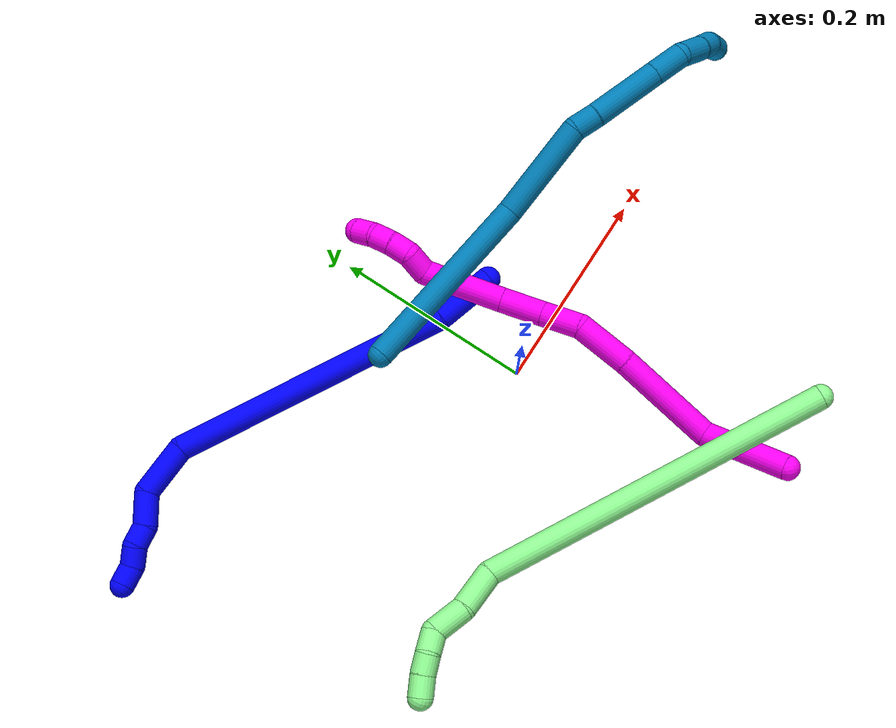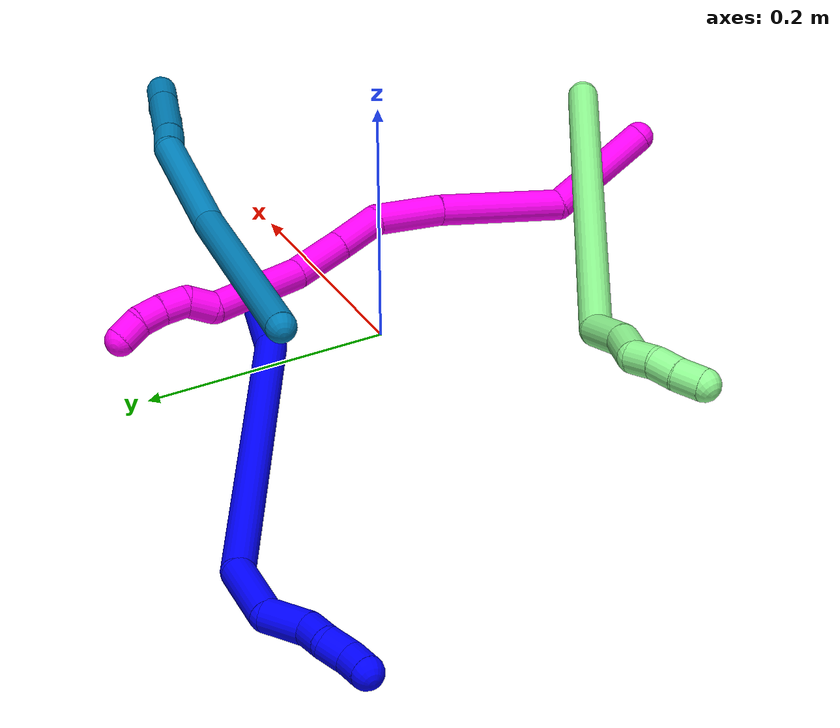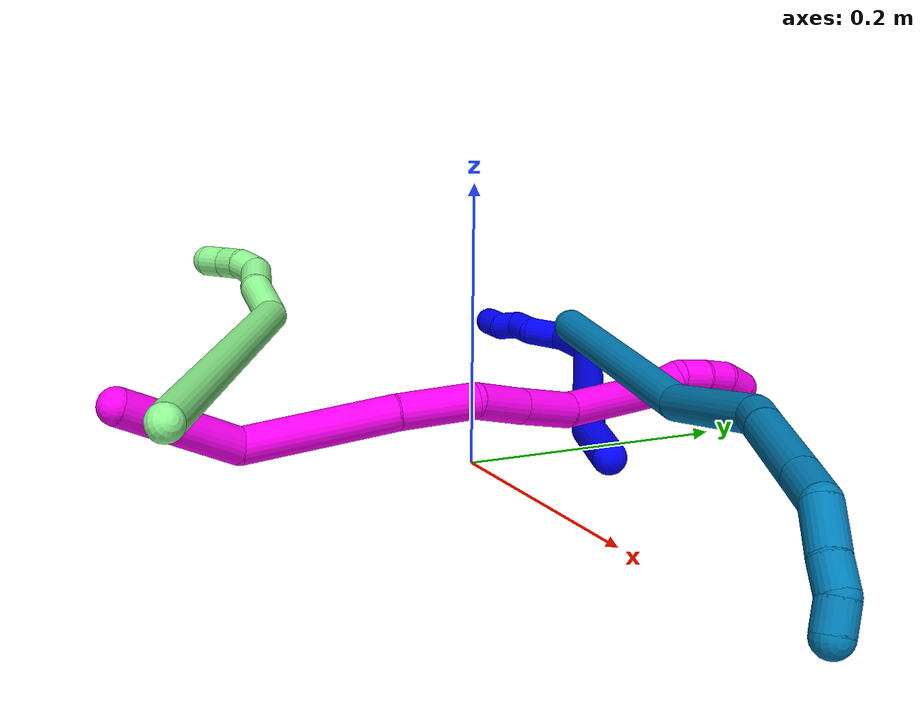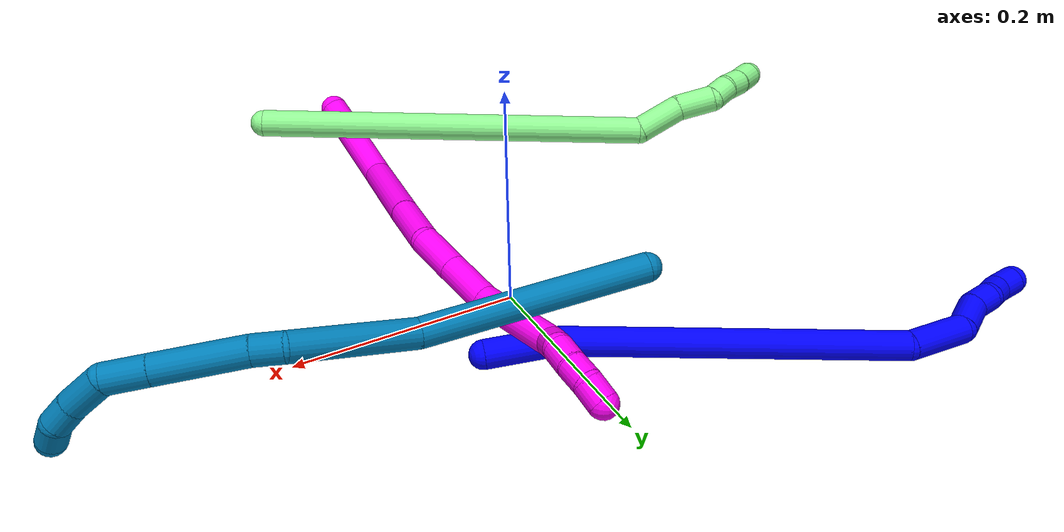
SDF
<sdf version="1.7">
 <world name="default">
  <model name="photoneo_s_sensor">
   <static>1</static>
   <pose>0 0 2 1.57079 1.57079 3.14159</pose>
   <link name="link">
    <inertial><mass>0.1</mass></inertial>
    <sensor name="sensor" type="depth">
     <update_rate>30</update_rate>
     <camera>
      <horizontal_fov>1.22</horizontal_fov>
      <image><width>1920</width><height>1200</height><format>B8G8R8</format></image>
      <clip><near>0.1</near><far>4</far></clip>
      <depth_camera><output>points</output></depth_camera>
     </camera>
     <plugin name="camera_plugin" filename="libgazebo_ros_depth_camera.so">
      <baseline>0.2</baseline>
      <alwaysOn>1</alwaysOn>
      <updateRate>0.0</updateRate>
      <cameraName>camera_ir</cameraName>
      <imageTopicName>/camera/color/image_raw</imageTopicName>
      <cameraInfoTopicName>/camera/color/camera_info</cameraInfoTopicName>
      <depthImageTopicName>/camera/depth/image_raw</depthImageTopicName>
      <depthImageCameraInfoTopicName>/camera/depth/camera_info</depthImageCameraInfoTopicName>
      <pointCloudTopicName>/camera/depth/points</pointCloudTopicName>
      <frameName>fr_optical</frameName>
      <pointCloudCutoff>0.1</pointCloudCutoff>
      <pointCloudCutoffMax>2.0</pointCloudCutoffMax>
      <distortionK1>0</distortionK1>
      <distortionK2>0</distortionK2>
      <distortionK3>0</distortionK3>
      <distortionT1>0</distortionT1>
      <distortionT2>0</distortionT2>
      <CxPrime>0</CxPrime>
      <Cx>0</Cx>
      <Cy>0</Cy>
      <focalLength>0</focalLength>
      <hackBaseline>0</hackBaseline>
     </plugin>
    </sensor>
   </link>
  </model>
  <model name="bin">
   <static>1</static>
   <link name="bottom">
    <collision name="collision-bottom">
     <pose>0 0 -0.01 0 -0 0</pose>
     <geometry><box><size>0.8 0.6 0.02</size></box></geometry>
     <surface>
      <friction><ode><mu>100</mu><mu2>100</mu2></ode></friction>
      <contact><collide_bitmask>65535</collide_bitmask></contact>
     </surface>
    </collision>
   </link>
   <link name="west_wall">
    <collision name="collision-west_wall">
     <pose>-0.41 0 0.1 0 -0 0</pose>
     <geometry><box><size>0.02 0.6 0.2</size></box></geometry>
     <surface>
      <friction><ode><mu>100</mu><mu2>100</mu2></ode></friction>
      <contact><collide_bitmask>65535</collide_bitmask></contact>
     </surface>
    </collision>
   </link>
   <link name="east_wall">
    <collision name="collision-east_wall">
     <pose>0.41 0 0.1 0 -0 0</pose>
     <geometry><box><size>0.02 0.6 0.2</size></box></geometry>
     <surface>
      <friction><ode><mu>100</mu><mu2>100</mu2></ode></friction>
      <contact><collide_bitmask>65535</collide_bitmask></contact>
     </surface>
    </collision>
   </link>
   <link name="south_wall">
    <collision name="collision-south_wall">
     <pose>0 -0.31 0.1 0 -0 0</pose>
     <geometry><box><size>0.8 0.02 0.2</size></box></geometry>
     <surface>
      <friction><ode><mu>100</mu><mu2>100</mu2></ode></friction>
      <contact><collide_bitmask>65535</collide_bitmask></contact>
     </surface>
    </collision>
   </link>
   <link name="north_wall">
    <collision name="collision-north_wall">
     <pose>0 0.31 0.1 0 -0 0</pose>
     <geometry><box><size>0.8 0.02 0.2</size></box></geometry>
     <surface>
      <friction><ode><mu>100</mu><mu2>100</mu2></ode></friction>
      <contact><collide_bitmask>65535</collide_bitmask></contact>
     </surface>
    </collision>
   </link>
  </model>
  <model name="1">
   <static>0</static>
   <link name="1">
    <collision name="collision-cylinder-e_1_1_4">
     <pose>-0.004019 0.009204 0.029469 -0.302724 -0.129452 0.019772</pose>
     <geometry><cylinder><radius>0.0125</radius><length>0.062266</length></cylinder></geometry>
     <surface>
      <friction><ode><mu>1.16</mu><mu2>1.16</mu2><slip1>0</slip1><slip2>0</slip2></ode></friction>
      <contact><ode><kp>1e+06</kp><kd>1</kd><max_vel>0</max_vel><min_depth>0.001</min_depth></ode></contact>
     </surface>
    </collision>
    <visual name="visual-cylinder-e_1_1_4">
     <pose>-0.004019 0.009204 0.029469 -0.302724 -0.129452 0.019772</pose>
     <geometry><cylinder><radius>0.0125</radius><length>0.062266</length></cylinder></geometry>
     <material><ambient>0 0 1 1</ambient></material>
    </visual>
    <collision name="collision-cylinder-e_2_4_5">
     <pose>-0.058876 0.065907 0.184811 -0.360834 -0.361289 0.066601</pose>
     <geometry><cylinder><radius>0.0125</radius><length>0.287644</length></cylinder></geometry>
     <surface>
      <friction><ode><mu>1.16</mu><mu2>1.16</mu2><slip1>0</slip1><slip2>0</slip2></ode></friction>
      <contact><ode><kp>1e+06</kp><kd>1</kd><max_vel>0</max_vel><min_depth>0.001</min_depth></ode></contact>
     </surface>
    </collision>
    <visual name="visual-cylinder-e_2_4_5">
     <pose>-0.058876 0.065907 0.184811 -0.360834 -0.361289 0.066601</pose>
     <geometry><cylinder><radius>0.0125</radius><length>0.287644</length></cylinder></geometry>
     <material><ambient>0 0 1 1</ambient></material>
    </visual>
    <collision name="collision-cylinder-e_3_5_6">
     <pose>-0.108482 0.117528 0.33723 -0.15406 0.045853 -0.00354</pose>
     <geometry><cylinder><radius>0.0125</radius><length>0.053785</length></cylinder></geometry>
     <surface>
      <friction><ode><mu>1.16</mu><mu2>1.16</mu2><slip1>0</slip1><slip2>0</slip2></ode></friction>
      <contact><ode><kp>1e+06</kp><kd>1</kd><max_vel>0</max_vel><min_depth>0.001</min_depth></ode></contact>
     </surface>
    </collision>
    <visual name="visual-cylinder-e_3_5_6">
     <pose>-0.108482 0.117528 0.33723 -0.15406 0.045853 -0.00354</pose>
     <geometry><cylinder><radius>0.0125</radius><length>0.053785</length></cylinder></geometry>
     <material><ambient>0 0 1 1</ambient></material>
    </visual>
    <collision name="collision-cylinder-e_4_6_7">
     <pose>-0.097515 0.11961 0.377688 0.145587 0.605524 0.045549</pose>
     <geometry><cylinder><radius>0.0125</radius><length>0.034203</length></cylinder></geometry>
     <surface>
      <friction><ode><mu>1.16</mu><mu2>1.16</mu2><slip1>0</slip1><slip2>0</slip2></ode></friction>
      <contact><ode><kp>1e+06</kp><kd>1</kd><max_vel>0</max_vel><min_depth>0.001</min_depth></ode></contact>
     </surface>
    </collision>
    <visual name="visual-cylinder-e_4_6_7">
     <pose>-0.097515 0.11961 0.377688 0.145587 0.605524 0.045549</pose>
     <geometry><cylinder><radius>0.0125</radius><length>0.034203</length></cylinder></geometry>
     <material><ambient>0 0 1 1</ambient></material>
    </visual>
    <collision name="collision-cylinder-e_5_7_8">
     <pose>-0.085176 0.119004 0.401732 -0.140583 0.249302 -0.017644</pose>
     <geometry><cylinder><radius>0.0125</radius><length>0.021117</length></cylinder></geometry>
     <surface>
      <friction><ode><mu>1.16</mu><mu2>1.16</mu2><slip1>0</slip1><slip2>0</slip2></ode></friction>
      <contact><ode><kp>1e+06</kp><kd>1</kd><max_vel>0</max_vel><min_depth>0.001</min_depth></ode></contact>
     </surface>
    </collision>
    <visual name="visual-cylinder-e_5_7_8">
     <pose>-0.085176 0.119004 0.401732 -0.140583 0.249302 -0.017644</pose>
     <geometry><cylinder><radius>0.0125</radius><length>0.021117</length></cylinder></geometry>
     <material><ambient>0 0 1 1</ambient></material>
    </visual>
    <collision name="collision-cylinder-e_6_8_9">
     <pose>-0.07871 0.117719 0.421002 0.289175 0.384765 0.05671</pose>
     <geometry><cylinder><radius>0.0125</radius><length>0.020572</length></cylinder></geometry>
     <surface>
      <friction><ode><mu>1.16</mu><mu2>1.16</mu2><slip1>0</slip1><slip2>0</slip2></ode></friction>
      <contact><ode><kp>1e+06</kp><kd>1</kd><max_vel>0</max_vel><min_depth>0.001</min_depth></ode></contact>
     </surface>
    </collision>
    <visual name="visual-cylinder-e_6_8_9">
     <pose>-0.07871 0.117719 0.421002 0.289175 0.384765 0.05671</pose>
     <geometry><cylinder><radius>0.0125</radius><length>0.020572</length></cylinder></geometry>
     <material><ambient>0 0 1 1</ambient></material>
    </visual>
    <collision name="collision-cylinder-e_7_9_2">
     <pose>-0.072576 0.116217 0.440015 -0.122559 0.224616 -0.01384</pose>
     <geometry><cylinder><radius>0.0125</radius><length>0.020412</length></cylinder></geometry>
     <surface>
      <friction><ode><mu>1.16</mu><mu2>1.16</mu2><slip1>0</slip1><slip2>0</slip2></ode></friction>
      <contact><ode><kp>1e+06</kp><kd>1</kd><max_vel>0</max_vel><min_depth>0.001</min_depth></ode></contact>
     </surface>
    </collision>
    <visual name="visual-cylinder-e_7_9_2">
     <pose>-0.072576 0.116217 0.440015 -0.122559 0.224616 -0.01384</pose>
     <geometry><cylinder><radius>0.0125</radius><length>0.020412</length></cylinder></geometry>
     <material><ambient>0 0 1 1</ambient></material>
    </visual>
    <collision name="collision-sphere-2">
     <pose>-0.070303 0.117433 0.44989 0 -0 0</pose>
     <geometry><sphere><radius>0.0125</radius></sphere></geometry>
     <surface>
      <friction><ode><mu>1.16</mu><mu2>1.16</mu2><slip1>0</slip1><slip2>0</slip2></ode></friction>
      <contact><ode><kp>1e+06</kp><kd>1</kd><max_vel>0</max_vel><min_depth>0.001</min_depth></ode></contact>
     </surface>
    </collision>
    <visual name="visual-sphere-2">
     <pose>-0.070303 0.117433 0.44989 0 -0 0</pose>
     <geometry><sphere><radius>0.0125</radius></sphere></geometry>
     <material><ambient>0 0 1 1</ambient></material>
    </visual>
    <collision name="collision-sphere-9">
     <pose>-0.074849 0.115 0.43014 0 -0 0</pose>
     <geometry><sphere><radius>0.0125</radius></sphere></geometry>
     <surface>
      <friction><ode><mu>1.16</mu><mu2>1.16</mu2><slip1>0</slip1><slip2>0</slip2></ode></friction>
      <contact><ode><kp>1e+06</kp><kd>1</kd><max_vel>0</max_vel><min_depth>0.001</min_depth></ode></contact>
     </surface>
    </collision>
    <visual name="visual-sphere-9">
     <pose>-0.074849 0.115 0.43014 0 -0 0</pose>
     <geometry><sphere><radius>0.0125</radius></sphere></geometry>
     <material><ambient>0 0 1 1</ambient></material>
    </visual>
    <collision name="collision-sphere-4">
     <pose>-0.008038 0.018408 0.058938 0 -0 0</pose>
     <geometry><sphere><radius>0.0125</radius></sphere></geometry>
     <surface>
      <friction><ode><mu>1.16</mu><mu2>1.16</mu2><slip1>0</slip1><slip2>0</slip2></ode></friction>
      <contact><ode><kp>1e+06</kp><kd>1</kd><max_vel>0</max_vel><min_depth>0.001</min_depth></ode></contact>
     </surface>
    </collision>
    <visual name="visual-sphere-4">
     <pose>-0.008038 0.018408 0.058938 0 -0 0</pose>
     <geometry><sphere><radius>0.0125</radius></sphere></geometry>
     <material><ambient>0 0 1 1</ambient></material>
    </visual>
    <collision name="collision-sphere-1">
     <geometry><sphere><radius>0.0125</radius></sphere></geometry>
     <surface>
      <friction><ode><mu>1.16</mu><mu2>1.16</mu2><slip1>0</slip1><slip2>0</slip2></ode></friction>
      <contact><ode><kp>1e+06</kp><kd>1</kd><max_vel>0</max_vel><min_depth>0.001</min_depth></ode></contact>
     </surface>
    </collision>
    <visual name="visual-sphere-1">
     <geometry><sphere><radius>0.0125</radius></sphere></geometry>
     <material><ambient>0 0 1 1</ambient></material>
    </visual>
    <collision name="collision-sphere-8">
     <pose>-0.082571 0.120438 0.411863 0 -0 0</pose>
     <geometry><sphere><radius>0.0125</radius></sphere></geometry>
     <surface>
      <friction><ode><mu>1.16</mu><mu2>1.16</mu2><slip1>0</slip1><slip2>0</slip2></ode></friction>
      <contact><ode><kp>1e+06</kp><kd>1</kd><max_vel>0</max_vel><min_depth>0.001</min_depth></ode></contact>
     </surface>
    </collision>
    <visual name="visual-sphere-8">
     <pose>-0.082571 0.120438 0.411863 0 -0 0</pose>
     <geometry><sphere><radius>0.0125</radius></sphere></geometry>
     <material><ambient>0 0 1 1</ambient></material>
    </visual>
    <collision name="collision-sphere-5">
     <pose>-0.109715 0.113406 0.310684 0 -0 0</pose>
     <geometry><sphere><radius>0.0125</radius></sphere></geometry>
     <surface>
      <friction><ode><mu>1.16</mu><mu2>1.16</mu2><slip1>0</slip1><slip2>0</slip2></ode></friction>
      <contact><ode><kp>1e+06</kp><kd>1</kd><max_vel>0</max_vel><min_depth>0.001</min_depth></ode></contact>
     </surface>
    </collision>
    <visual name="visual-sphere-5">
     <pose>-0.109715 0.113406 0.310684 0 -0 0</pose>
     <geometry><sphere><radius>0.0125</radius></sphere></geometry>
     <material><ambient>0 0 1 1</ambient></material>
    </visual>
    <collision name="collision-sphere-6">
     <pose>-0.107249 0.12165 0.363776 0 -0 0</pose>
     <geometry><sphere><radius>0.0125</radius></sphere></geometry>
     <surface>
      <friction><ode><mu>1.16</mu><mu2>1.16</mu2><slip1>0</slip1><slip2>0</slip2></ode></friction>
      <contact><ode><kp>1e+06</kp><kd>1</kd><max_vel>0</max_vel><min_depth>0.001</min_depth></ode></contact>
     </surface>
    </collision>
    <visual name="visual-sphere-6">
     <pose>-0.107249 0.12165 0.363776 0 -0 0</pose>
     <geometry><sphere><radius>0.0125</radius></sphere></geometry>
     <material><ambient>0 0 1 1</ambient></material>
    </visual>
    <collision name="collision-sphere-7">
     <pose>-0.087781 0.11757 0.391601 0 -0 0</pose>
     <geometry><sphere><radius>0.0125</radius></sphere></geometry>
     <surface>
      <friction><ode><mu>1.16</mu><mu2>1.16</mu2><slip1>0</slip1><slip2>0</slip2></ode></friction>
      <contact><ode><kp>1e+06</kp><kd>1</kd><max_vel>0</max_vel><min_depth>0.001</min_depth></ode></contact>
     </surface>
    </collision>
    <visual name="visual-sphere-7">
     <pose>-0.087781 0.11757 0.391601 0 -0 0</pose>
     <geometry><sphere><radius>0.0125</radius></sphere></geometry>
     <material><ambient>0 0 1 1</ambient></material>
    </visual>
    <inertial>
     <pose>-0.06251 0.0745 0.224354 0 -0 0</pose>
     <mass>0.5</mass>
     <inertia>
      <ixx>0.002027</ixx>
      <ixy>0</ixy>
      <ixz>0</ixz>
      <iyy>0.002058</iyy>
      <iyz>0</iyz>
      <izz>7.1e-05</izz>
     </inertia>
    </inertial>
   </link>
   <pose>0.063472 0.075536 0.011552 1.74061 -0.489316 -1.69049</pose>
  </model>
  <model name="9">
   <static>0</static>
   <link name="9">
    <collision name="collision-cylinder-e_1_1_4">
     <pose>0.021314 -0.000131 0.092889 0.001416 0.22555 0.00016</pose>
     <geometry><cylinder><radius>0.0125</radius><length>0.190606</length></cylinder></geometry>
     <surface>
      <friction><ode><mu>1.16</mu><mu2>1.16</mu2><slip1>0</slip1><slip2>0</slip2></ode></friction>
      <contact><ode><kp>1e+06</kp><kd>1</kd><max_vel>0</max_vel><min_depth>0.001</min_depth></ode></contact>
     </surface>
    </collision>
    <visual name="visual-cylinder-e_1_1_4">
     <pose>0.021314 -0.000131 0.092889 0.001416 0.22555 0.00016</pose>
     <geometry><cylinder><radius>0.0125</radius><length>0.190606</length></cylinder></geometry>
     <material><ambient>0 0.490196 0.709804 1</ambient></material>
    </visual>
    <collision name="collision-cylinder-e_2_4_5">
     <pose>0.042987 0.005521 0.236509 -0.113521 0.007044 -0.0004</pose>
     <geometry><cylinder><radius>0.0125</radius><length>0.102122</length></cylinder></geometry>
     <surface>
      <friction><ode><mu>1.16</mu><mu2>1.16</mu2><slip1>0</slip1><slip2>0</slip2></ode></friction>
      <contact><ode><kp>1e+06</kp><kd>1</kd><max_vel>0</max_vel><min_depth>0.001</min_depth></ode></contact>
     </surface>
    </collision>
    <visual name="visual-cylinder-e_2_4_5">
     <pose>0.042987 0.005521 0.236509 -0.113521 0.007044 -0.0004</pose>
     <geometry><cylinder><radius>0.0125</radius><length>0.102122</length></cylinder></geometry>
     <material><ambient>0 0.490196 0.709804 1</ambient></material>
    </visual>
    <collision name="collision-cylinder-e_3_5_6">
     <pose>0.044646 0.00826 0.299229 0.248752 0.104594 0.013088</pose>
     <geometry><cylinder><radius>0.0125</radius><length>0.024875</length></cylinder></geometry>
     <surface>
      <friction><ode><mu>1.16</mu><mu2>1.16</mu2><slip1>0</slip1><slip2>0</slip2></ode></friction>
      <contact><ode><kp>1e+06</kp><kd>1</kd><max_vel>0</max_vel><min_depth>0.001</min_depth></ode></contact>
     </surface>
    </collision>
    <visual name="visual-cylinder-e_3_5_6">
     <pose>0.044646 0.00826 0.299229 0.248752 0.104594 0.013088</pose>
     <geometry><cylinder><radius>0.0125</radius><length>0.024875</length></cylinder></geometry>
     <material><ambient>0 0.490196 0.709804 1</ambient></material>
    </visual>
    <collision name="collision-cylinder-e_4_6_7">
     <pose>0.05298 -0.002302 0.34632 0.210924 0.19355 0.020552</pose>
     <geometry><cylinder><radius>0.0125</radius><length>0.073163</length></cylinder></geometry>
     <surface>
      <friction><ode><mu>1.16</mu><mu2>1.16</mu2><slip1>0</slip1><slip2>0</slip2></ode></friction>
      <contact><ode><kp>1e+06</kp><kd>1</kd><max_vel>0</max_vel><min_depth>0.001</min_depth></ode></contact>
     </surface>
    </collision>
    <visual name="visual-cylinder-e_4_6_7">
     <pose>0.05298 -0.002302 0.34632 0.210924 0.19355 0.020552</pose>
     <geometry><cylinder><radius>0.0125</radius><length>0.073163</length></cylinder></geometry>
     <material><ambient>0 0.490196 0.709804 1</ambient></material>
    </visual>
    <collision name="collision-cylinder-e_5_7_8">
     <pose>0.063369 -0.013443 0.397875 0.216914 0.196423 0.021456</pose>
     <geometry><cylinder><radius>0.0125</radius><length>0.034355</length></cylinder></geometry>
     <surface>
      <friction><ode><mu>1.16</mu><mu2>1.16</mu2><slip1>0</slip1><slip2>0</slip2></ode></friction>
      <contact><ode><kp>1e+06</kp><kd>1</kd><max_vel>0</max_vel><min_depth>0.001</min_depth></ode></contact>
     </surface>
    </collision>
    <visual name="visual-cylinder-e_5_7_8">
     <pose>0.063369 -0.013443 0.397875 0.216914 0.196423 0.021456</pose>
     <geometry><cylinder><radius>0.0125</radius><length>0.034355</length></cylinder></geometry>
     <material><ambient>0 0.490196 0.709804 1</ambient></material>
    </visual>
    <collision name="collision-cylinder-e_6_8_9">
     <pose>0.077676 -0.023795 0.424852 0.568635 0.720018 0.219121</pose>
     <geometry><cylinder><radius>0.0125</radius><length>0.033227</length></cylinder></geometry>
     <surface>
      <friction><ode><mu>1.16</mu><mu2>1.16</mu2><slip1>0</slip1><slip2>0</slip2></ode></friction>
      <contact><ode><kp>1e+06</kp><kd>1</kd><max_vel>0</max_vel><min_depth>0.001</min_depth></ode></contact>
     </surface>
    </collision>
    <visual name="visual-cylinder-e_6_8_9">
     <pose>0.077676 -0.023795 0.424852 0.568635 0.720018 0.219121</pose>
     <geometry><cylinder><radius>0.0125</radius><length>0.033227</length></cylinder></geometry>
     <material><ambient>0 0.490196 0.709804 1</ambient></material>
    </visual>
    <collision name="collision-cylinder-e_7_9_10">
     <pose>0.096703 -0.034049 0.441584 0.516969 0.846581 0.23712</pose>
     <geometry><cylinder><radius>0.0125</radius><length>0.021553</length></cylinder></geometry>
     <surface>
      <friction><ode><mu>1.16</mu><mu2>1.16</mu2><slip1>0</slip1><slip2>0</slip2></ode></friction>
      <contact><ode><kp>1e+06</kp><kd>1</kd><max_vel>0</max_vel><min_depth>0.001</min_depth></ode></contact>
     </surface>
    </collision>
    <visual name="visual-cylinder-e_7_9_10">
     <pose>0.096703 -0.034049 0.441584 0.516969 0.846581 0.23712</pose>
     <geometry><cylinder><radius>0.0125</radius><length>0.021553</length></cylinder></geometry>
     <material><ambient>0 0.490196 0.709804 1</ambient></material>
    </visual>
    <collision name="collision-cylinder-e_8_10_2">
     <pose>0.112861 -0.043198 0.449796 1.22798 0.935071 0.683787</pose>
     <geometry><cylinder><radius>0.0125</radius><length>0.020099</length></cylinder></geometry>
     <surface>
      <friction><ode><mu>1.16</mu><mu2>1.16</mu2><slip1>0</slip1><slip2>0</slip2></ode></friction>
      <contact><ode><kp>1e+06</kp><kd>1</kd><max_vel>0</max_vel><min_depth>0.001</min_depth></ode></contact>
     </surface>
    </collision>
    <visual name="visual-cylinder-e_8_10_2">
     <pose>0.112861 -0.043198 0.449796 1.22798 0.935071 0.683787</pose>
     <geometry><cylinder><radius>0.0125</radius><length>0.020099</length></cylinder></geometry>
     <material><ambient>0 0.490196 0.709804 1</ambient></material>
    </visual>
    <collision name="collision-sphere-2">
     <pose>0.120948 -0.048818 0.451802 0 -0 0</pose>
     <geometry><sphere><radius>0.0125</radius></sphere></geometry>
     <surface>
      <friction><ode><mu>1.16</mu><mu2>1.16</mu2><slip1>0</slip1><slip2>0</slip2></ode></friction>
      <contact><ode><kp>1e+06</kp><kd>1</kd><max_vel>0</max_vel><min_depth>0.001</min_depth></ode></contact>
     </surface>
    </collision>
    <visual name="visual-sphere-2">
     <pose>0.120948 -0.048818 0.451802 0 -0 0</pose>
     <geometry><sphere><radius>0.0125</radius></sphere></geometry>
     <material><ambient>0 0.490196 0.709804 1</ambient></material>
    </visual>
    <collision name="collision-sphere-10">
     <pose>0.104775 -0.037578 0.447791 0 -0 0</pose>
     <geometry><sphere><radius>0.0125</radius></sphere></geometry>
     <surface>
      <friction><ode><mu>1.16</mu><mu2>1.16</mu2><slip1>0</slip1><slip2>0</slip2></ode></friction>
      <contact><ode><kp>1e+06</kp><kd>1</kd><max_vel>0</max_vel><min_depth>0.001</min_depth></ode></contact>
     </surface>
    </collision>
    <visual name="visual-sphere-10">
     <pose>0.104775 -0.037578 0.447791 0 -0 0</pose>
     <geometry><sphere><radius>0.0125</radius></sphere></geometry>
     <material><ambient>0 0.490196 0.709804 1</ambient></material>
    </visual>
    <collision name="collision-sphere-9">
     <pose>0.088631 -0.03052 0.435377 0 -0 0</pose>
     <geometry><sphere><radius>0.0125</radius></sphere></geometry>
     <surface>
      <friction><ode><mu>1.16</mu><mu2>1.16</mu2><slip1>0</slip1><slip2>0</slip2></ode></friction>
      <contact><ode><kp>1e+06</kp><kd>1</kd><max_vel>0</max_vel><min_depth>0.001</min_depth></ode></contact>
     </surface>
    </collision>
    <visual name="visual-sphere-9">
     <pose>0.088631 -0.03052 0.435377 0 -0 0</pose>
     <geometry><sphere><radius>0.0125</radius></sphere></geometry>
     <material><ambient>0 0.490196 0.709804 1</ambient></material>
    </visual>
    <collision name="collision-sphere-4">
     <pose>0.042628 -0.000263 0.185778 0 -0 0</pose>
     <geometry><sphere><radius>0.0125</radius></sphere></geometry>
     <surface>
      <friction><ode><mu>1.16</mu><mu2>1.16</mu2><slip1>0</slip1><slip2>0</slip2></ode></friction>
      <contact><ode><kp>1e+06</kp><kd>1</kd><max_vel>0</max_vel><min_depth>0.001</min_depth></ode></contact>
     </surface>
    </collision>
    <visual name="visual-sphere-4">
     <pose>0.042628 -0.000263 0.185778 0 -0 0</pose>
     <geometry><sphere><radius>0.0125</radius></sphere></geometry>
     <material><ambient>0 0.490196 0.709804 1</ambient></material>
    </visual>
    <collision name="collision-sphere-1">
     <geometry><sphere><radius>0.0125</radius></sphere></geometry>
     <surface>
      <friction><ode><mu>1.16</mu><mu2>1.16</mu2><slip1>0</slip1><slip2>0</slip2></ode></friction>
      <contact><ode><kp>1e+06</kp><kd>1</kd><max_vel>0</max_vel><min_depth>0.001</min_depth></ode></contact>
     </surface>
    </collision>
    <visual name="visual-sphere-1">
     <geometry><sphere><radius>0.0125</radius></sphere></geometry>
     <material><ambient>0 0.490196 0.709804 1</ambient></material>
    </visual>
    <collision name="collision-sphere-8">
     <pose>0.066721 -0.017069 0.414327 0 -0 0</pose>
     <geometry><sphere><radius>0.0125</radius></sphere></geometry>
     <surface>
      <friction><ode><mu>1.16</mu><mu2>1.16</mu2><slip1>0</slip1><slip2>0</slip2></ode></friction>
      <contact><ode><kp>1e+06</kp><kd>1</kd><max_vel>0</max_vel><min_depth>0.001</min_depth></ode></contact>
     </surface>
    </collision>
    <visual name="visual-sphere-8">
     <pose>0.066721 -0.017069 0.414327 0 -0 0</pose>
     <geometry><sphere><radius>0.0125</radius></sphere></geometry>
     <material><ambient>0 0.490196 0.709804 1</ambient></material>
    </visual>
    <collision name="collision-sphere-5">
     <pose>0.043347 0.011305 0.28724 0 -0 0</pose>
     <geometry><sphere><radius>0.0125</radius></sphere></geometry>
     <surface>
      <friction><ode><mu>1.16</mu><mu2>1.16</mu2><slip1>0</slip1><slip2>0</slip2></ode></friction>
      <contact><ode><kp>1e+06</kp><kd>1</kd><max_vel>0</max_vel><min_depth>0.001</min_depth></ode></contact>
     </surface>
    </collision>
    <visual name="visual-sphere-5">
     <pose>0.043347 0.011305 0.28724 0 -0 0</pose>
     <geometry><sphere><radius>0.0125</radius></sphere></geometry>
     <material><ambient>0 0.490196 0.709804 1</ambient></material>
    </visual>
    <collision name="collision-sphere-6">
     <pose>0.045944 0.005214 0.311218 0 -0 0</pose>
     <geometry><sphere><radius>0.0125</radius></sphere></geometry>
     <surface>
      <friction><ode><mu>1.16</mu><mu2>1.16</mu2><slip1>0</slip1><slip2>0</slip2></ode></friction>
      <contact><ode><kp>1e+06</kp><kd>1</kd><max_vel>0</max_vel><min_depth>0.001</min_depth></ode></contact>
     </surface>
    </collision>
    <visual name="visual-sphere-6">
     <pose>0.045944 0.005214 0.311218 0 -0 0</pose>
     <geometry><sphere><radius>0.0125</radius></sphere></geometry>
     <material><ambient>0 0.490196 0.709804 1</ambient></material>
    </visual>
    <collision name="collision-sphere-7">
     <pose>0.060016 -0.009817 0.381423 0 -0 0</pose>
     <geometry><sphere><radius>0.0125</radius></sphere></geometry>
     <surface>
      <friction><ode><mu>1.16</mu><mu2>1.16</mu2><slip1>0</slip1><slip2>0</slip2></ode></friction>
      <contact><ode><kp>1e+06</kp><kd>1</kd><max_vel>0</max_vel><min_depth>0.001</min_depth></ode></contact>
     </surface>
    </collision>
    <visual name="visual-sphere-7">
     <pose>0.060016 -0.009817 0.381423 0 -0 0</pose>
     <geometry><sphere><radius>0.0125</radius></sphere></geometry>
     <material><ambient>0 0.490196 0.709804 1</ambient></material>
    </visual>
    <inertial>
     <pose>0.0451 -0.004558 0.241965 0 -0 0</pose>
     <mass>0.5</mass>
     <inertia>
      <ixx>0.000721</ixx>
      <ixy>0</ixy>
      <ixz>0</ixz>
      <iyy>0.000723</iyy>
      <iyz>0</iyz>
      <izz>-0.000107</izz>
     </inertia>
    </inertial>
   </link>
   <pose>-0.064997 0.116365 0.077647 1.16106 1.21426 0.970818</pose>
  </model>
  <model name="10">
   <static>0</static>
   <link name="10">
    <collision name="collision-cylinder-e_1_1_4">
     <pose>0.017681 0.024196 -0.033663 -2.51838 0.403139 -1.13068</pose>
     <geometry><cylinder><radius>0.0125</radius><length>0.09014</length></cylinder></geometry>
     <surface>
      <friction><ode><mu>1.16</mu><mu2>1.16</mu2><slip1>0</slip1><slip2>0</slip2></ode></friction>
      <contact><ode><kp>1e+06</kp><kd>1</kd><max_vel>0</max_vel><min_depth>0.001</min_depth></ode></contact>
     </surface>
    </collision>
    <visual name="visual-cylinder-e_1_1_4">
     <pose>0.017681 0.024196 -0.033663 -2.51838 0.403139 -1.13068</pose>
     <geometry><cylinder><radius>0.0125</radius><length>0.09014</length></cylinder></geometry>
     <material><ambient>1 0 0.964706 1</ambient></material>
    </visual>
    <collision name="collision-cylinder-e_2_4_5">
     <pose>0.026466 0.088644 -0.100187 -2.25545 -0.169582 0.354461</pose>
     <geometry><cylinder><radius>0.0125</radius><length>0.105436</length></cylinder></geometry>
     <surface>
      <friction><ode><mu>1.16</mu><mu2>1.16</mu2><slip1>0</slip1><slip2>0</slip2></ode></friction>
      <contact><ode><kp>1e+06</kp><kd>1</kd><max_vel>0</max_vel><min_depth>0.001</min_depth></ode></contact>
     </surface>
    </collision>
    <visual name="visual-cylinder-e_2_4_5">
     <pose>0.026466 0.088644 -0.100187 -2.25545 -0.169582 0.354461</pose>
     <geometry><cylinder><radius>0.0125</radius><length>0.105436</length></cylinder></geometry>
     <material><ambient>1 0 0.964706 1</ambient></material>
    </visual>
    <collision name="collision-cylinder-e_3_5_6">
     <pose>0.015162 0.149071 -0.151401 -2.30892 -0.087992 0.198468</pose>
     <geometry><cylinder><radius>0.0125</radius><length>0.05476</length></cylinder></geometry>
     <surface>
      <friction><ode><mu>1.16</mu><mu2>1.16</mu2><slip1>0</slip1><slip2>0</slip2></ode></friction>
      <contact><ode><kp>1e+06</kp><kd>1</kd><max_vel>0</max_vel><min_depth>0.001</min_depth></ode></contact>
     </surface>
    </collision>
    <visual name="visual-cylinder-e_3_5_6">
     <pose>0.015162 0.149071 -0.151401 -2.30892 -0.087992 0.198468</pose>
     <geometry><cylinder><radius>0.0125</radius><length>0.05476</length></cylinder></geometry>
     <material><ambient>1 0 0.964706 1</ambient></material>
    </visual>
    <collision name="collision-cylinder-e_4_6_7">
     <pose>0.017088 0.179017 -0.186338 -2.60922 0.221338 -0.774009</pose>
     <geometry><cylinder><radius>0.0125</radius><length>0.03946</length></cylinder></geometry>
     <surface>
      <friction><ode><mu>1.16</mu><mu2>1.16</mu2><slip1>0</slip1><slip2>0</slip2></ode></friction>
      <contact><ode><kp>1e+06</kp><kd>1</kd><max_vel>0</max_vel><min_depth>0.001</min_depth></ode></contact>
     </surface>
    </collision>
    <visual name="visual-cylinder-e_4_6_7">
     <pose>0.017088 0.179017 -0.186338 -2.60922 0.221338 -0.774009</pose>
     <geometry><cylinder><radius>0.0125</radius><length>0.03946</length></cylinder></geometry>
     <material><ambient>1 0 0.964706 1</ambient></material>
    </visual>
    <collision name="collision-cylinder-e_5_7_8">
     <pose>0.025669 0.199873 -0.221478 -2.60304 0.194135 -0.678392</pose>
     <geometry><cylinder><radius>0.0125</radius><length>0.044056</length></cylinder></geometry>
     <surface>
      <friction><ode><mu>1.16</mu><mu2>1.16</mu2><slip1>0</slip1><slip2>0</slip2></ode></friction>
      <contact><ode><kp>1e+06</kp><kd>1</kd><max_vel>0</max_vel><min_depth>0.001</min_depth></ode></contact>
     </surface>
    </collision>
    <visual name="visual-cylinder-e_5_7_8">
     <pose>0.025669 0.199873 -0.221478 -2.60304 0.194135 -0.678392</pose>
     <geometry><cylinder><radius>0.0125</radius><length>0.044056</length></cylinder></geometry>
     <material><ambient>1 0 0.964706 1</ambient></material>
    </visual>
    <collision name="collision-cylinder-e_6_8_9">
     <pose>0.028308 0.230746 -0.275606 -2.63396 -0.039546 0.152172</pose>
     <geometry><cylinder><radius>0.0125</radius><length>0.081476</length></cylinder></geometry>
     <surface>
      <friction><ode><mu>1.16</mu><mu2>1.16</mu2><slip1>0</slip1><slip2>0</slip2></ode></friction>
      <contact><ode><kp>1e+06</kp><kd>1</kd><max_vel>0</max_vel><min_depth>0.001</min_depth></ode></contact>
     </surface>
    </collision>
    <visual name="visual-cylinder-e_6_8_9">
     <pose>0.028308 0.230746 -0.275606 -2.63396 -0.039546 0.152172</pose>
     <geometry><cylinder><radius>0.0125</radius><length>0.081476</length></cylinder></geometry>
     <material><ambient>1 0 0.964706 1</ambient></material>
    </visual>
    <collision name="collision-cylinder-e_7_9_10">
     <pose>0.021633 0.259404 -0.317056 -2.156 -0.444226 0.79622</pose>
     <geometry><cylinder><radius>0.0125</radius><length>0.023568</length></cylinder></geometry>
     <surface>
      <friction><ode><mu>1.16</mu><mu2>1.16</mu2><slip1>0</slip1><slip2>0</slip2></ode></friction>
      <contact><ode><kp>1e+06</kp><kd>1</kd><max_vel>0</max_vel><min_depth>0.001</min_depth></ode></contact>
     </surface>
    </collision>
    <visual name="visual-cylinder-e_7_9_10">
     <pose>0.021633 0.259404 -0.317056 -2.156 -0.444226 0.79622</pose>
     <geometry><cylinder><radius>0.0125</radius><length>0.023568</length></cylinder></geometry>
     <material><ambient>1 0 0.964706 1</ambient></material>
    </visual>
    <collision name="collision-cylinder-e_8_10_11">
     <pose>0.017277 0.275426 -0.330639 -2.39337 0.067239 -0.170913</pose>
     <geometry><cylinder><radius>0.0125</radius><length>0.021075</length></cylinder></geometry>
     <surface>
      <friction><ode><mu>1.16</mu><mu2>1.16</mu2><slip1>0</slip1><slip2>0</slip2></ode></friction>
      <contact><ode><kp>1e+06</kp><kd>1</kd><max_vel>0</max_vel><min_depth>0.001</min_depth></ode></contact>
     </surface>
    </collision>
    <visual name="visual-cylinder-e_8_10_11">
     <pose>0.017277 0.275426 -0.330639 -2.39337 0.067239 -0.170913</pose>
     <geometry><cylinder><radius>0.0125</radius><length>0.021075</length></cylinder></geometry>
     <material><ambient>1 0 0.964706 1</ambient></material>
    </visual>
    <collision name="collision-cylinder-e_9_11_12">
     <pose>0.019633 0.288465 -0.346261 -2.50224 0.165593 -0.491252</pose>
     <geometry><cylinder><radius>0.0125</radius><length>0.020002</length></cylinder></geometry>
     <surface>
      <friction><ode><mu>1.16</mu><mu2>1.16</mu2><slip1>0</slip1><slip2>0</slip2></ode></friction>
      <contact><ode><kp>1e+06</kp><kd>1</kd><max_vel>0</max_vel><min_depth>0.001</min_depth></ode></contact>
     </surface>
    </collision>
    <visual name="visual-cylinder-e_9_11_12">
     <pose>0.019633 0.288465 -0.346261 -2.50224 0.165593 -0.491252</pose>
     <geometry><cylinder><radius>0.0125</radius><length>0.020002</length></cylinder></geometry>
     <material><ambient>1 0 0.964706 1</ambient></material>
    </visual>
    <collision name="collision-cylinder-e_10_12_2">
     <pose>0.025826 0.298882 -0.361863 -2.60894 0.471105 -1.44306</pose>
     <geometry><cylinder><radius>0.0125</radius><length>0.020027</length></cylinder></geometry>
     <surface>
      <friction><ode><mu>1.16</mu><mu2>1.16</mu2><slip1>0</slip1><slip2>0</slip2></ode></friction>
      <contact><ode><kp>1e+06</kp><kd>1</kd><max_vel>0</max_vel><min_depth>0.001</min_depth></ode></contact>
     </surface>
    </collision>
    <visual name="visual-cylinder-e_10_12_2">
     <pose>0.025826 0.298882 -0.361863 -2.60894 0.471105 -1.44306</pose>
     <geometry><cylinder><radius>0.0125</radius><length>0.020027</length></cylinder></geometry>
     <material><ambient>1 0 0.964706 1</ambient></material>
    </visual>
    <collision name="collision-sphere-2">
     <pose>0.030371 0.303413 -0.369549 0 -0 0</pose>
     <geometry><sphere><radius>0.0125</radius></sphere></geometry>
     <surface>
      <friction><ode><mu>1.16</mu><mu2>1.16</mu2><slip1>0</slip1><slip2>0</slip2></ode></friction>
      <contact><ode><kp>1e+06</kp><kd>1</kd><max_vel>0</max_vel><min_depth>0.001</min_depth></ode></contact>
     </surface>
    </collision>
    <visual name="visual-sphere-2">
     <pose>0.030371 0.303413 -0.369549 0 -0 0</pose>
     <geometry><sphere><radius>0.0125</radius></sphere></geometry>
     <material><ambient>1 0 0.964706 1</ambient></material>
    </visual>
    <collision name="collision-sphere-12">
     <pose>0.021282 0.294351 -0.354176 0 -0 0</pose>
     <geometry><sphere><radius>0.0125</radius></sphere></geometry>
     <surface>
      <friction><ode><mu>1.16</mu><mu2>1.16</mu2><slip1>0</slip1><slip2>0</slip2></ode></friction>
      <contact><ode><kp>1e+06</kp><kd>1</kd><max_vel>0</max_vel><min_depth>0.001</min_depth></ode></contact>
     </surface>
    </collision>
    <visual name="visual-sphere-12">
     <pose>0.021282 0.294351 -0.354176 0 -0 0</pose>
     <geometry><sphere><radius>0.0125</radius></sphere></geometry>
     <material><ambient>1 0 0.964706 1</ambient></material>
    </visual>
    <collision name="collision-sphere-11">
     <pose>0.017985 0.282579 -0.338345 0 -0 0</pose>
     <geometry><sphere><radius>0.0125</radius></sphere></geometry>
     <surface>
      <friction><ode><mu>1.16</mu><mu2>1.16</mu2><slip1>0</slip1><slip2>0</slip2></ode></friction>
      <contact><ode><kp>1e+06</kp><kd>1</kd><max_vel>0</max_vel><min_depth>0.001</min_depth></ode></contact>
     </surface>
    </collision>
    <visual name="visual-sphere-11">
     <pose>0.017985 0.282579 -0.338345 0 -0 0</pose>
     <geometry><sphere><radius>0.0125</radius></sphere></geometry>
     <material><ambient>1 0 0.964706 1</ambient></material>
    </visual>
    <collision name="collision-sphere-10">
     <pose>0.016569 0.268273 -0.322934 0 -0 0</pose>
     <geometry><sphere><radius>0.0125</radius></sphere></geometry>
     <surface>
      <friction><ode><mu>1.16</mu><mu2>1.16</mu2><slip1>0</slip1><slip2>0</slip2></ode></friction>
      <contact><ode><kp>1e+06</kp><kd>1</kd><max_vel>0</max_vel><min_depth>0.001</min_depth></ode></contact>
     </surface>
    </collision>
    <visual name="visual-sphere-10">
     <pose>0.016569 0.268273 -0.322934 0 -0 0</pose>
     <geometry><sphere><radius>0.0125</radius></sphere></geometry>
     <material><ambient>1 0 0.964706 1</ambient></material>
    </visual>
    <collision name="collision-sphere-9">
     <pose>0.026697 0.250534 -0.311179 0 -0 0</pose>
     <geometry><sphere><radius>0.0125</radius></sphere></geometry>
     <surface>
      <friction><ode><mu>1.16</mu><mu2>1.16</mu2><slip1>0</slip1><slip2>0</slip2></ode></friction>
      <contact><ode><kp>1e+06</kp><kd>1</kd><max_vel>0</max_vel><min_depth>0.001</min_depth></ode></contact>
     </surface>
    </collision>
    <visual name="visual-sphere-9">
     <pose>0.026697 0.250534 -0.311179 0 -0 0</pose>
     <geometry><sphere><radius>0.0125</radius></sphere></geometry>
     <material><ambient>1 0 0.964706 1</ambient></material>
    </visual>
    <collision name="collision-sphere-4">
     <pose>0.035363 0.048393 -0.067327 0 -0 0</pose>
     <geometry><sphere><radius>0.0125</radius></sphere></geometry>
     <surface>
      <friction><ode><mu>1.16</mu><mu2>1.16</mu2><slip1>0</slip1><slip2>0</slip2></ode></friction>
      <contact><ode><kp>1e+06</kp><kd>1</kd><max_vel>0</max_vel><min_depth>0.001</min_depth></ode></contact>
     </surface>
    </collision>
    <visual name="visual-sphere-4">
     <pose>0.035363 0.048393 -0.067327 0 -0 0</pose>
     <geometry><sphere><radius>0.0125</radius></sphere></geometry>
     <material><ambient>1 0 0.964706 1</ambient></material>
    </visual>
    <collision name="collision-sphere-1">
     <geometry><sphere><radius>0.0125</radius></sphere></geometry>
     <surface>
      <friction><ode><mu>1.16</mu><mu2>1.16</mu2><slip1>0</slip1><slip2>0</slip2></ode></friction>
      <contact><ode><kp>1e+06</kp><kd>1</kd><max_vel>0</max_vel><min_depth>0.001</min_depth></ode></contact>
     </surface>
    </collision>
    <visual name="visual-sphere-1">
     <geometry><sphere><radius>0.0125</radius></sphere></geometry>
     <material><ambient>1 0 0.964706 1</ambient></material>
    </visual>
    <collision name="collision-sphere-8">
     <pose>0.029918 0.210958 -0.240033 0 -0 0</pose>
     <geometry><sphere><radius>0.0125</radius></sphere></geometry>
     <surface>
      <friction><ode><mu>1.16</mu><mu2>1.16</mu2><slip1>0</slip1><slip2>0</slip2></ode></friction>
      <contact><ode><kp>1e+06</kp><kd>1</kd><max_vel>0</max_vel><min_depth>0.001</min_depth></ode></contact>
     </surface>
    </collision>
    <visual name="visual-sphere-8">
     <pose>0.029918 0.210958 -0.240033 0 -0 0</pose>
     <geometry><sphere><radius>0.0125</radius></sphere></geometry>
     <material><ambient>1 0 0.964706 1</ambient></material>
    </visual>
    <collision name="collision-sphere-5">
     <pose>0.017568 0.128896 -0.133048 0 -0 0</pose>
     <geometry><sphere><radius>0.0125</radius></sphere></geometry>
     <surface>
      <friction><ode><mu>1.16</mu><mu2>1.16</mu2><slip1>0</slip1><slip2>0</slip2></ode></friction>
      <contact><ode><kp>1e+06</kp><kd>1</kd><max_vel>0</max_vel><min_depth>0.001</min_depth></ode></contact>
     </surface>
    </collision>
    <visual name="visual-sphere-5">
     <pose>0.017568 0.128896 -0.133048 0 -0 0</pose>
     <geometry><sphere><radius>0.0125</radius></sphere></geometry>
     <material><ambient>1 0 0.964706 1</ambient></material>
    </visual>
    <collision name="collision-sphere-6">
     <pose>0.012756 0.169246 -0.169753 0 -0 0</pose>
     <geometry><sphere><radius>0.0125</radius></sphere></geometry>
     <surface>
      <friction><ode><mu>1.16</mu><mu2>1.16</mu2><slip1>0</slip1><slip2>0</slip2></ode></friction>
      <contact><ode><kp>1e+06</kp><kd>1</kd><max_vel>0</max_vel><min_depth>0.001</min_depth></ode></contact>
     </surface>
    </collision>
    <visual name="visual-sphere-6">
     <pose>0.012756 0.169246 -0.169753 0 -0 0</pose>
     <geometry><sphere><radius>0.0125</radius></sphere></geometry>
     <material><ambient>1 0 0.964706 1</ambient></material>
    </visual>
    <collision name="collision-sphere-7">
     <pose>0.021419 0.188787 -0.202923 0 -0 0</pose>
     <geometry><sphere><radius>0.0125</radius></sphere></geometry>
     <surface>
      <friction><ode><mu>1.16</mu><mu2>1.16</mu2><slip1>0</slip1><slip2>0</slip2></ode></friction>
      <contact><ode><kp>1e+06</kp><kd>1</kd><max_vel>0</max_vel><min_depth>0.001</min_depth></ode></contact>
     </surface>
    </collision>
    <visual name="visual-sphere-7">
     <pose>0.021419 0.188787 -0.202923 0 -0 0</pose>
     <geometry><sphere><radius>0.0125</radius></sphere></geometry>
     <material><ambient>1 0 0.964706 1</ambient></material>
    </visual>
    <inertial>
     <pose>0.02222 0.156068 -0.180135 0 -0 0</pose>
     <mass>0.5</mass>
     <inertia>
      <ixx>0.000181</ixx>
      <ixy>0</ixy>
      <ixz>0</ixz>
      <iyy>-0.000123</iyy>
      <iyz>0</iyz>
      <izz>-0.000196</izz>
     </inertia>
    </inertial>
   </link>
   <pose>0.05434 -0.269228 0.082645 -1.30413 1.54152 -2.13675</pose>
  </model>
  <model name="13">
   <static>0</static>
   <link name="13">
    <collision name="collision-cylinder-e_1_1_4">
     <pose>-0.119543 -0.006765 0.13291 0.050856 -0.731856 -0.019491</pose>
     <geometry><cylinder><radius>0.0125</radius><length>0.357779</length></cylinder></geometry>
     <surface>
      <friction><ode><mu>1.16</mu><mu2>1.16</mu2><slip1>0</slip1><slip2>0</slip2></ode></friction>
      <contact><ode><kp>1e+06</kp><kd>1</kd><max_vel>0</max_vel><min_depth>0.001</min_depth></ode></contact>
     </surface>
    </collision>
    <visual name="visual-cylinder-e_1_1_4">
     <pose>-0.119543 -0.006765 0.13291 0.050856 -0.731856 -0.019491</pose>
     <geometry><cylinder><radius>0.0125</radius><length>0.357779</length></cylinder></geometry>
     <material><ambient>0.564706 0.984314 0.572549 1</ambient></material>
    </visual>
    <collision name="collision-cylinder-e_2_4_5">
     <pose>-0.24991 -0.002471 0.281584 -0.611809 -0.512058 0.164971</pose>
     <geometry><cylinder><radius>0.0125</radius><length>0.044179</length></cylinder></geometry>
     <surface>
      <friction><ode><mu>1.16</mu><mu2>1.16</mu2><slip1>0</slip1><slip2>0</slip2></ode></friction>
      <contact><ode><kp>1e+06</kp><kd>1</kd><max_vel>0</max_vel><min_depth>0.001</min_depth></ode></contact>
     </surface>
    </collision>
    <visual name="visual-cylinder-e_2_4_5">
     <pose>-0.24991 -0.002471 0.281584 -0.611809 -0.512058 0.164971</pose>
     <geometry><cylinder><radius>0.0125</radius><length>0.044179</length></cylinder></geometry>
     <material><ambient>0.564706 0.984314 0.572549 1</ambient></material>
    </visual>
    <collision name="collision-cylinder-e_3_5_6">
     <pose>-0.272219 0.01301 0.309941 -0.337606 -0.710594 0.126302</pose>
     <geometry><cylinder><radius>0.0125</radius><length>0.035218</length></cylinder></geometry>
     <surface>
      <friction><ode><mu>1.16</mu><mu2>1.16</mu2><slip1>0</slip1><slip2>0</slip2></ode></friction>
      <contact><ode><kp>1e+06</kp><kd>1</kd><max_vel>0</max_vel><min_depth>0.001</min_depth></ode></contact>
     </surface>
    </collision>
    <visual name="visual-cylinder-e_3_5_6">
     <pose>-0.272219 0.01301 0.309941 -0.337606 -0.710594 0.126302</pose>
     <geometry><cylinder><radius>0.0125</radius><length>0.035218</length></cylinder></geometry>
     <material><ambient>0.564706 0.984314 0.572549 1</ambient></material>
    </visual>
    <collision name="collision-cylinder-e_4_6_7">
     <pose>-0.285022 0.023481 0.331105 -0.614655 -0.124881 0.039682</pose>
     <geometry><cylinder><radius>0.0125</radius><length>0.021147</length></cylinder></geometry>
     <surface>
      <friction><ode><mu>1.16</mu><mu2>1.16</mu2><slip1>0</slip1><slip2>0</slip2></ode></friction>
      <contact><ode><kp>1e+06</kp><kd>1</kd><max_vel>0</max_vel><min_depth>0.001</min_depth></ode></contact>
     </surface>
    </collision>
    <visual name="visual-cylinder-e_4_6_7">
     <pose>-0.285022 0.023481 0.331105 -0.614655 -0.124881 0.039682</pose>
     <geometry><cylinder><radius>0.0125</radius><length>0.021147</length></cylinder></geometry>
     <material><ambient>0.564706 0.984314 0.572549 1</ambient></material>
    </visual>
    <collision name="collision-cylinder-e_5_7_8">
     <pose>-0.286282 0.033476 0.348954 -0.402068 0.005658 -0.001153</pose>
     <geometry><cylinder><radius>0.0125</radius><length>0.020164</length></cylinder></geometry>
     <surface>
      <friction><ode><mu>1.16</mu><mu2>1.16</mu2><slip1>0</slip1><slip2>0</slip2></ode></friction>
      <contact><ode><kp>1e+06</kp><kd>1</kd><max_vel>0</max_vel><min_depth>0.001</min_depth></ode></contact>
     </surface>
    </collision>
    <visual name="visual-cylinder-e_5_7_8">
     <pose>-0.286282 0.033476 0.348954 -0.402068 0.005658 -0.001153</pose>
     <geometry><cylinder><radius>0.0125</radius><length>0.020164</length></cylinder></geometry>
     <material><ambient>0.564706 0.984314 0.572549 1</ambient></material>
    </visual>
    <collision name="collision-cylinder-e_6_8_2">
     <pose>-0.284995 0.042442 0.367665 -0.489106 0.114541 -0.028613</pose>
     <geometry><cylinder><radius>0.0125</radius><length>0.021514</length></cylinder></geometry>
     <surface>
      <friction><ode><mu>1.16</mu><mu2>1.16</mu2><slip1>0</slip1><slip2>0</slip2></ode></friction>
      <contact><ode><kp>1e+06</kp><kd>1</kd><max_vel>0</max_vel><min_depth>0.001</min_depth></ode></contact>
     </surface>
    </collision>
    <visual name="visual-cylinder-e_6_8_2">
     <pose>-0.284995 0.042442 0.367665 -0.489106 0.114541 -0.028613</pose>
     <geometry><cylinder><radius>0.0125</radius><length>0.021514</length></cylinder></geometry>
     <material><ambient>0.564706 0.984314 0.572549 1</ambient></material>
    </visual>
    <collision name="collision-sphere-2">
     <pose>-0.283766 0.047463 0.377098 0 -0 0</pose>
     <geometry><sphere><radius>0.0125</radius></sphere></geometry>
     <surface>
      <friction><ode><mu>1.16</mu><mu2>1.16</mu2><slip1>0</slip1><slip2>0</slip2></ode></friction>
      <contact><ode><kp>1e+06</kp><kd>1</kd><max_vel>0</max_vel><min_depth>0.001</min_depth></ode></contact>
     </surface>
    </collision>
    <visual name="visual-sphere-2">
     <pose>-0.283766 0.047463 0.377098 0 -0 0</pose>
     <geometry><sphere><radius>0.0125</radius></sphere></geometry>
     <material><ambient>0.564706 0.984314 0.572549 1</ambient></material>
    </visual>
    <collision name="collision-sphere-4">
     <pose>-0.239087 -0.01353 0.26582 0 -0 0</pose>
     <geometry><sphere><radius>0.0125</radius></sphere></geometry>
     <surface>
      <friction><ode><mu>1.16</mu><mu2>1.16</mu2><slip1>0</slip1><slip2>0</slip2></ode></friction>
      <contact><ode><kp>1e+06</kp><kd>1</kd><max_vel>0</max_vel><min_depth>0.001</min_depth></ode></contact>
     </surface>
    </collision>
    <visual name="visual-sphere-4">
     <pose>-0.239087 -0.01353 0.26582 0 -0 0</pose>
     <geometry><sphere><radius>0.0125</radius></sphere></geometry>
     <material><ambient>0.564706 0.984314 0.572549 1</ambient></material>
    </visual>
    <collision name="collision-sphere-1">
     <geometry><sphere><radius>0.0125</radius></sphere></geometry>
     <surface>
      <friction><ode><mu>1.16</mu><mu2>1.16</mu2><slip1>0</slip1><slip2>0</slip2></ode></friction>
      <contact><ode><kp>1e+06</kp><kd>1</kd><max_vel>0</max_vel><min_depth>0.001</min_depth></ode></contact>
     </surface>
    </collision>
    <visual name="visual-sphere-1">
     <geometry><sphere><radius>0.0125</radius></sphere></geometry>
     <material><ambient>0.564706 0.984314 0.572549 1</ambient></material>
    </visual>
    <collision name="collision-sphere-8">
     <pose>-0.286225 0.037421 0.358231 0 -0 0</pose>
     <geometry><sphere><radius>0.0125</radius></sphere></geometry>
     <surface>
      <friction><ode><mu>1.16</mu><mu2>1.16</mu2><slip1>0</slip1><slip2>0</slip2></ode></friction>
      <contact><ode><kp>1e+06</kp><kd>1</kd><max_vel>0</max_vel><min_depth>0.001</min_depth></ode></contact>
     </surface>
    </collision>
    <visual name="visual-sphere-8">
     <pose>-0.286225 0.037421 0.358231 0 -0 0</pose>
     <geometry><sphere><radius>0.0125</radius></sphere></geometry>
     <material><ambient>0.564706 0.984314 0.572549 1</ambient></material>
    </visual>
    <collision name="collision-sphere-5">
     <pose>-0.260733 0.008589 0.297347 0 -0 0</pose>
     <geometry><sphere><radius>0.0125</radius></sphere></geometry>
     <surface>
      <friction><ode><mu>1.16</mu><mu2>1.16</mu2><slip1>0</slip1><slip2>0</slip2></ode></friction>
      <contact><ode><kp>1e+06</kp><kd>1</kd><max_vel>0</max_vel><min_depth>0.001</min_depth></ode></contact>
     </surface>
    </collision>
    <visual name="visual-sphere-5">
     <pose>-0.260733 0.008589 0.297347 0 -0 0</pose>
     <geometry><sphere><radius>0.0125</radius></sphere></geometry>
     <material><ambient>0.564706 0.984314 0.572549 1</ambient></material>
    </visual>
    <collision name="collision-sphere-6">
     <pose>-0.283705 0.017431 0.322534 0 -0 0</pose>
     <geometry><sphere><radius>0.0125</radius></sphere></geometry>
     <surface>
      <friction><ode><mu>1.16</mu><mu2>1.16</mu2><slip1>0</slip1><slip2>0</slip2></ode></friction>
      <contact><ode><kp>1e+06</kp><kd>1</kd><max_vel>0</max_vel><min_depth>0.001</min_depth></ode></contact>
     </surface>
    </collision>
    <visual name="visual-sphere-6">
     <pose>-0.283705 0.017431 0.322534 0 -0 0</pose>
     <geometry><sphere><radius>0.0125</radius></sphere></geometry>
     <material><ambient>0.564706 0.984314 0.572549 1</ambient></material>
    </visual>
    <collision name="collision-sphere-7">
     <pose>-0.286339 0.029531 0.339676 0 -0 0</pose>
     <geometry><sphere><radius>0.0125</radius></sphere></geometry>
     <surface>
      <friction><ode><mu>1.16</mu><mu2>1.16</mu2><slip1>0</slip1><slip2>0</slip2></ode></friction>
      <contact><ode><kp>1e+06</kp><kd>1</kd><max_vel>0</max_vel><min_depth>0.001</min_depth></ode></contact>
     </surface>
    </collision>
    <visual name="visual-sphere-7">
     <pose>-0.286339 0.029531 0.339676 0 -0 0</pose>
     <geometry><sphere><radius>0.0125</radius></sphere></geometry>
     <material><ambient>0.564706 0.984314 0.572549 1</ambient></material>
    </visual>
    <inertial>
     <pose>-0.162658 2.7e-05 0.185712 0 -0 0</pose>
     <mass>0.5</mass>
     <inertia>
      <ixx>0.002789</ixx>
      <ixy>0</ixy>
      <ixz>0</ixz>
      <iyy>0.003794</iyy>
      <iyz>0</iyz>
      <izz>0.002734</izz>
     </inertia>
    </inertial>
   </link>
   <pose>0.12787 -0.25955 0.089434 2.03688 0.469728 -1.21377</pose>
  </model>
 </world>
</sdf>
